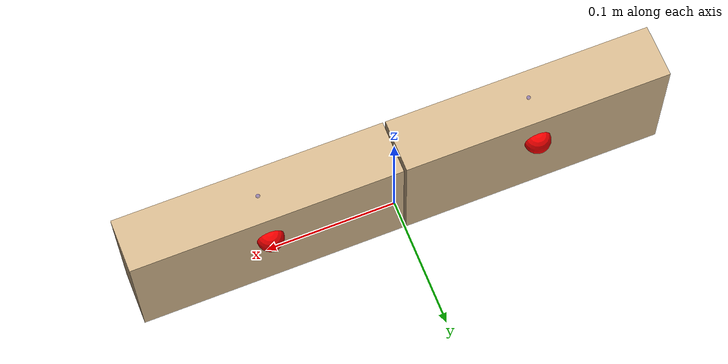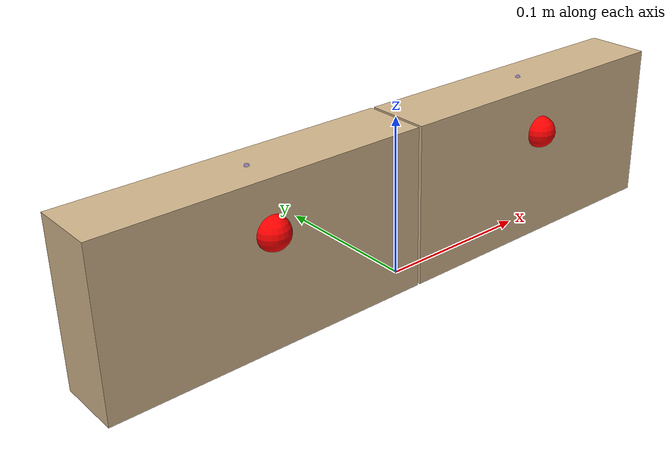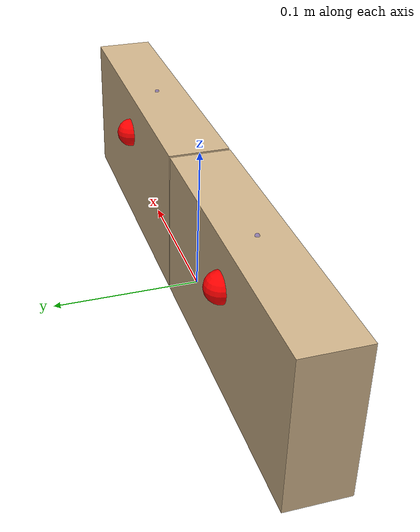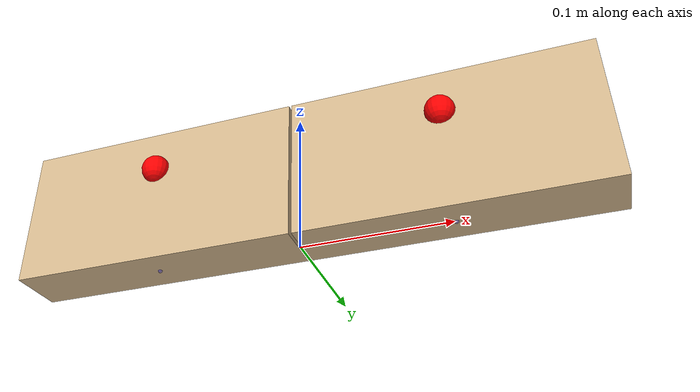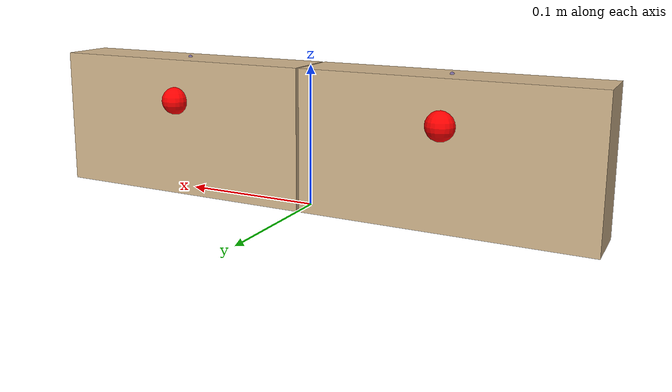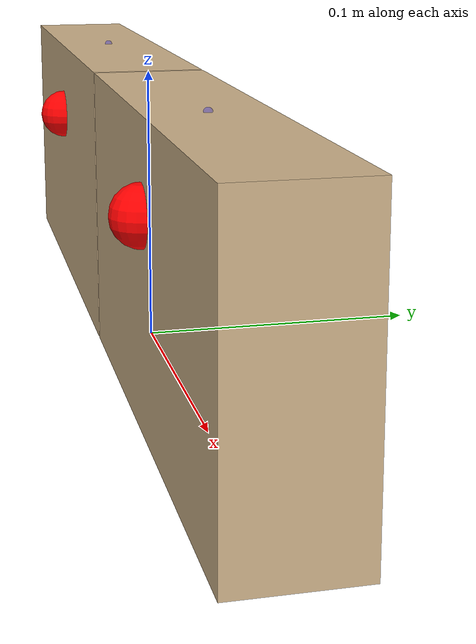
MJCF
<mujoco model="blocks">
  <custom>
    <numeric data="-0.169076 0.006912 0.050073 1.0 0.0 0.0 0.0" name="1_block_l_initpos" />
    <numeric data="0.207085 0.013862 0.050073 1.0 0.0 0.0 0.0" name="2_block_r_initpos" />
  </custom>
<asset>
    <texture file="../textures/light-wood.png" name="tex-light-wood" type="2d" />
    <material name="light-wood" reflectance="0.5" texrepeat="20 20" texture="tex-light-wood" texuniform="true" />
  </asset>
  <equality>
    <weld active="false" body1="1_block_l" body2="2_block_r" solimp="1 1 0.5" solref="0.01 0.3" />
  </equality>
  <worldbody>
    <body name="1_block_l" pos="-0.101 0.0 0.05" quat="1 0 0 0">
      <geom density="100" material="light-wood" name="block_l_geom" pos="0 0 0" rgba="0.82 0.71 0.55 1" size="0.1 0.02 0.05" solref="0.001 1" type="box" />
      <site name="1_block_l_ltgt_site0" pos="0 -0.02 0.02" size="0.01 0.01 0.01" rgba="1 0 0 1" type="sphere" group="1"></site>
      <site name="1_block_l_rtgt_site0" pos="0 0.02 0.02" size="0.01 0.01 0.01" rgba="1 0 0 1" type="sphere" group="1"></site>
      <site name="left-right,0,180,conn_site1" pos="0.101 0. 0." quat="0.707 0 -0.707 0" rgba="0.9019 0.0980 0.2941 0.3" size="0.01" />
      <site name="1_block_l_bottom_site" pos="0.0 0.0 -0.05" rgba="0 0 1 0.3" size="0.0015" />
      <site name="1_block_l_top_site" pos="0.0 0.0 0.05" rgba="0 0 1 0.3" size="0.0015" />
      <site name="1_block_l_horizontal_radius_site" pos="0. 0. 0." rgba="0 0 1 0." size="0.1" />
    </body>
    <body name="2_block_r" pos="0.101 0.0 0.05" quat="1 0 0 0">
      <geom density="100" material="light-wood" name="block_r_geom" pos="0 0 0" rgba="0.82 0.71 0.55 1" size="0.1 0.02 0.05" solref="0.001 1" type="box" />
      <site name="2_block_r_ltgt_site0" pos="0 -0.02 0.02" size="0.01 0.01 0.01" rgba="1 0 0 1" type="sphere" group="1"></site>
      <site name="2_block_r_rtgt_site0" pos="0 0.02 0.02" size="0.01 0.01 0.01" rgba="1 0 0 1" type="sphere" group="1"></site>
      <site name="right-left,0,180,conn_site1" pos="-0.101 0. 0." quat="0.707 0 -0.707 0" rgba="0.9019 0.0980 0.2941 0.3" size="0.01" />
      <site name="2_block_r_bottom_site" pos="0.0 0.0 -0.05" rgba="0 0 1 0.3" size="0.0015" />
      <site name="2_block_r_top_site" pos="0.0 0.0 0.05" rgba="0 0 1 0.3" size="0.0015" />
      <site name="2_block_r_horizontal_radius_site" pos="0. 0. 0." rgba="0 0 1 0." size="0.1" />
    </body>
  </worldbody>
<actuator /><sensor /><contact /><default /></mujoco>
